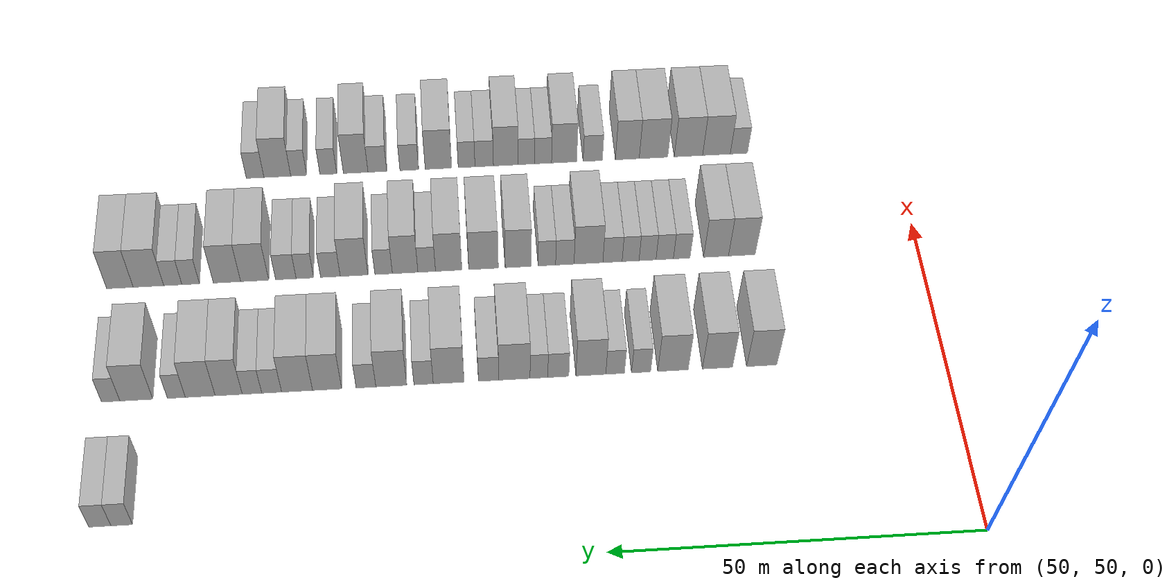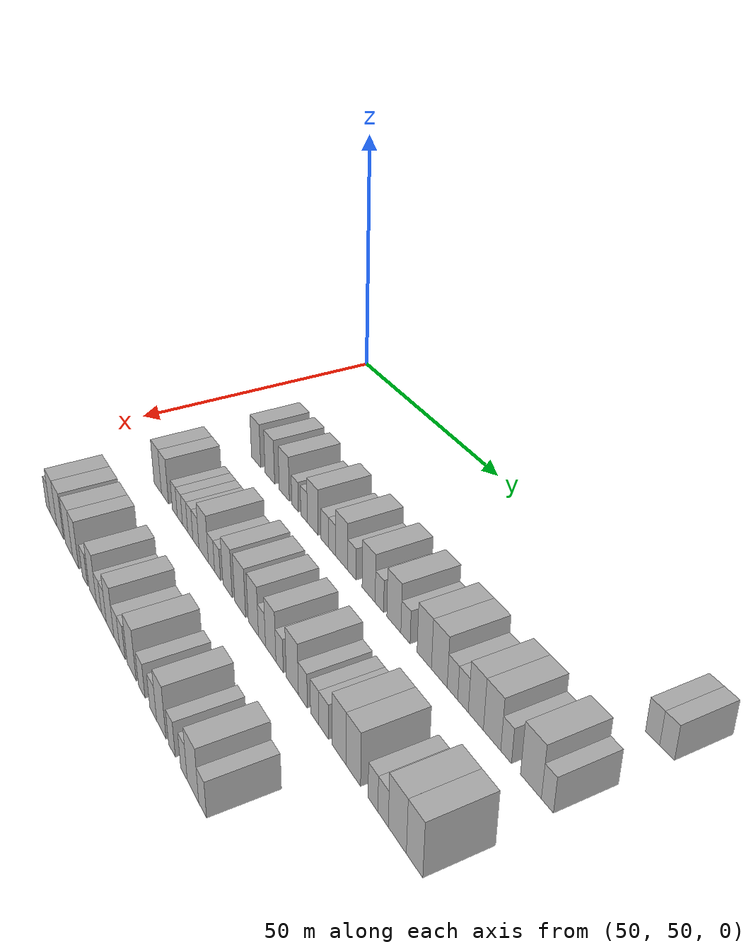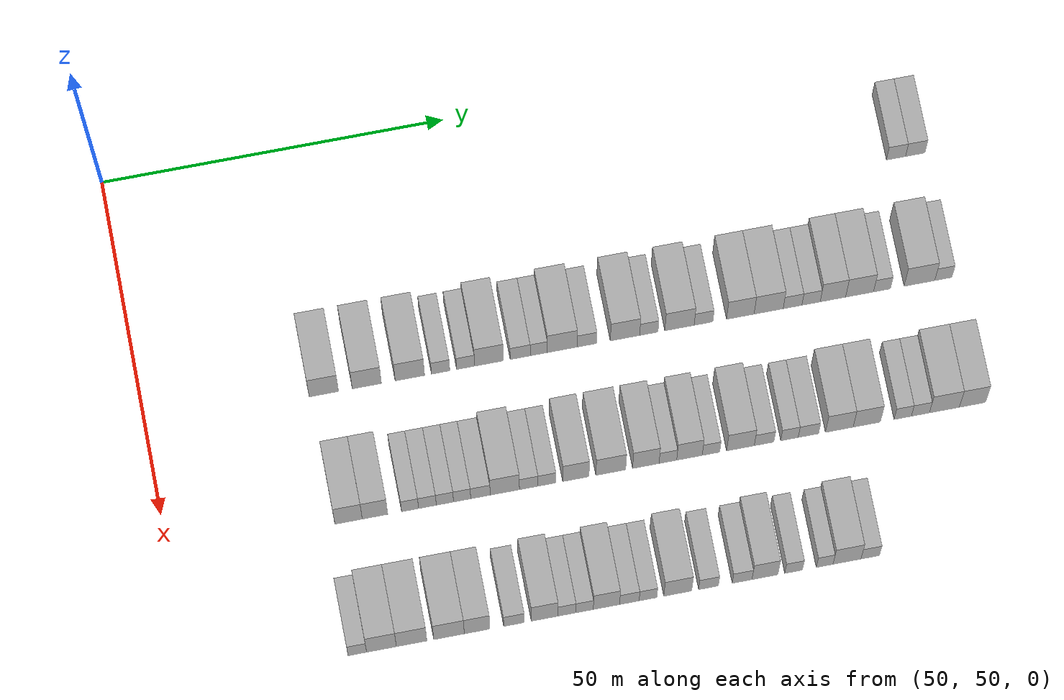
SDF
<sdf version="1.6">
 <world name="default">
  <model name="building_479">
   <static>1</static>
   <pose>63.0000 163.0776 0 0.000000 0.000000 0.000000</pose>
   <link name="link">
    <pose>0 0 3.00 0 0 0</pose>
    <collision name="collision"><geometry><box><size>10.0000 2.8079 6.0000</size></box></geometry></collision>
    <visual name="visual">
     <cast_shadows>0</cast_shadows>
     <geometry><box><size>10.0000 2.8079 6.0000</size></box></geometry>
     <material>
      <script>
       <uri>model://HANNAS_wall/materials/scripts</uri>
       <uri>model://HANNAS_wall/materials/textures</uri>
       <name>vrc/HANNAS_wall</name>
      </script>
     </material>
    </visual>
   </link>
  </model>
  <model name="building_480">
   <static>1</static>
   <pose>63.0000 165.9172 0 0.000000 0.000000 0.000000</pose>
   <link name="link">
    <pose>0 0 3.00 0 0 0</pose>
    <collision name="collision"><geometry><box><size>10.0000 2.8714 6.0000</size></box></geometry></collision>
    <visual name="visual">
     <cast_shadows>0</cast_shadows>
     <geometry><box><size>10.0000 2.8714 6.0000</size></box></geometry>
     <material>
      <script>
       <uri>model://HANNAS_wall/materials/scripts</uri>
       <uri>model://HANNAS_wall/materials/textures</uri>
       <name>vrc/HANNAS_wall</name>
      </script>
     </material>
    </visual>
   </link>
  </model>
  <model name="building_642">
   <static>1</static>
   <pose>82.0000 75.7562 0 0.000000 0.000000 0.000000</pose>
   <link name="link">
    <pose>0 0 4.50 0 0 0</pose>
    <collision name="collision"><geometry><box><size>10.0000 4.2381 9.0000</size></box></geometry></collision>
    <visual name="visual">
     <cast_shadows>0</cast_shadows>
     <geometry><box><size>10.0000 4.2381 9.0000</size></box></geometry>
     <material>
      <script>
       <uri>model://HANNAS_wall/materials/scripts</uri>
       <uri>model://HANNAS_wall/materials/textures</uri>
       <name>vrc/HANNAS_wall</name>
      </script>
     </material>
    </visual>
   </link>
  </model>
  <model name="building_643">
   <static>1</static>
   <pose>82.0000 81.9824 0 0.000000 0.000000 0.000000</pose>
   <link name="link">
    <pose>0 0 4.50 0 0 0</pose>
    <collision name="collision"><geometry><box><size>10.0000 4.2143 9.0000</size></box></geometry></collision>
    <visual name="visual">
     <cast_shadows>0</cast_shadows>
     <geometry><box><size>10.0000 4.2143 9.0000</size></box></geometry>
     <material>
      <script>
       <uri>model://HANNAS_wall/materials/scripts</uri>
       <uri>model://HANNAS_wall/materials/textures</uri>
       <name>vrc/HANNAS_wall</name>
      </script>
     </material>
    </visual>
   </link>
  </model>
  <model name="building_644">
   <static>1</static>
   <pose>82.0000 88.2176 0 0.000000 0.000000 0.000000</pose>
   <link name="link">
    <pose>0 0 4.50 0 0 0</pose>
    <collision name="collision"><geometry><box><size>10.0000 4.2559 9.0000</size></box></geometry></collision>
    <visual name="visual">
     <cast_shadows>0</cast_shadows>
     <geometry><box><size>10.0000 4.2559 9.0000</size></box></geometry>
     <material>
      <script>
       <uri>model://HANNAS_wall/materials/scripts</uri>
       <uri>model://HANNAS_wall/materials/textures</uri>
       <name>vrc/HANNAS_wall</name>
      </script>
     </material>
    </visual>
   </link>
  </model>
  <model name="building_645">
   <static>1</static>
   <pose>82.0000 92.6761 0 0.000000 0.000000 0.000000</pose>
   <link name="link">
    <pose>0 0 3.00 0 0 0</pose>
    <collision name="collision"><geometry><box><size>10.0000 2.6611 6.0000</size></box></geometry></collision>
    <visual name="visual">
     <cast_shadows>0</cast_shadows>
     <geometry><box><size>10.0000 2.6611 6.0000</size></box></geometry>
     <material>
      <script>
       <uri>model://HANNAS_wall/materials/scripts</uri>
       <uri>model://HANNAS_wall/materials/textures</uri>
       <name>vrc/HANNAS_wall</name>
      </script>
     </material>
    </visual>
   </link>
  </model>
  <model name="building_646">
   <static>1</static>
   <pose>82.0000 96.3099 0 0.000000 0.000000 0.000000</pose>
   <link name="link">
    <pose>0 0 3.00 0 0 0</pose>
    <collision name="collision"><geometry><box><size>10.0000 2.6065 6.0000</size></box></geometry></collision>
    <visual name="visual">
     <cast_shadows>0</cast_shadows>
     <geometry><box><size>10.0000 2.6065 6.0000</size></box></geometry>
     <material>
      <script>
       <uri>model://HANNAS_wall/materials/scripts</uri>
       <uri>model://HANNAS_wall/materials/textures</uri>
       <name>vrc/HANNAS_wall</name>
      </script>
     </material>
    </visual>
   </link>
  </model>
  <model name="building_647">
   <static>1</static>
   <pose>82.0000 99.6954 0 0.000000 0.000000 0.000000</pose>
   <link name="link">
    <pose>0 0 4.50 0 0 0</pose>
    <collision name="collision"><geometry><box><size>10.0000 4.1645 9.0000</size></box></geometry></collision>
    <visual name="visual">
     <cast_shadows>0</cast_shadows>
     <geometry><box><size>10.0000 4.1645 9.0000</size></box></geometry>
     <material>
      <script>
       <uri>model://HANNAS_wall/materials/scripts</uri>
       <uri>model://HANNAS_wall/materials/textures</uri>
       <name>vrc/HANNAS_wall</name>
      </script>
     </material>
    </visual>
   </link>
  </model>
  <model name="building_648">
   <static>1</static>
   <pose>82.0000 104.2372 0 0.000000 0.000000 0.000000</pose>
   <link name="link">
    <pose>0 0 3.00 0 0 0</pose>
    <collision name="collision"><geometry><box><size>10.0000 2.9190 6.0000</size></box></geometry></collision>
    <visual name="visual">
     <cast_shadows>0</cast_shadows>
     <geometry><box><size>10.0000 2.9190 6.0000</size></box></geometry>
     <material>
      <script>
       <uri>model://HANNAS_wall/materials/scripts</uri>
       <uri>model://HANNAS_wall/materials/textures</uri>
       <name>vrc/HANNAS_wall</name>
      </script>
     </material>
    </visual>
   </link>
  </model>
  <model name="building_649">
   <static>1</static>
   <pose>82.0000 106.9320 0 0.000000 0.000000 0.000000</pose>
   <link name="link">
    <pose>0 0 3.00 0 0 0</pose>
    <collision name="collision"><geometry><box><size>10.0000 2.4707 6.0000</size></box></geometry></collision>
    <visual name="visual">
     <cast_shadows>0</cast_shadows>
     <geometry><box><size>10.0000 2.4707 6.0000</size></box></geometry>
     <material>
      <script>
       <uri>model://HANNAS_wall/materials/scripts</uri>
       <uri>model://HANNAS_wall/materials/textures</uri>
       <name>vrc/HANNAS_wall</name>
      </script>
     </material>
    </visual>
   </link>
  </model>
  <model name="building_650">
   <static>1</static>
   <pose>82.0000 110.3358 0 0.000000 0.000000 0.000000</pose>
   <link name="link">
    <pose>0 0 4.50 0 0 0</pose>
    <collision name="collision"><geometry><box><size>10.0000 4.3368 9.0000</size></box></geometry></collision>
    <visual name="visual">
     <cast_shadows>0</cast_shadows>
     <geometry><box><size>10.0000 4.3368 9.0000</size></box></geometry>
     <material>
      <script>
       <uri>model://HANNAS_wall/materials/scripts</uri>
       <uri>model://HANNAS_wall/materials/textures</uri>
       <name>vrc/HANNAS_wall</name>
      </script>
     </material>
    </visual>
   </link>
  </model>
  <model name="building_651">
   <static>1</static>
   <pose>82.0000 113.9204 0 0.000000 0.000000 0.000000</pose>
   <link name="link">
    <pose>0 0 3.00 0 0 0</pose>
    <collision name="collision"><geometry><box><size>10.0000 2.8323 6.0000</size></box></geometry></collision>
    <visual name="visual">
     <cast_shadows>0</cast_shadows>
     <geometry><box><size>10.0000 2.8323 6.0000</size></box></geometry>
     <material>
      <script>
       <uri>model://HANNAS_wall/materials/scripts</uri>
       <uri>model://HANNAS_wall/materials/textures</uri>
       <name>vrc/HANNAS_wall</name>
      </script>
     </material>
    </visual>
   </link>
  </model>
  <model name="building_652">
   <static>1</static>
   <pose>82.0000 119.4723 0 0.000000 0.000000 0.000000</pose>
   <link name="link">
    <pose>0 0 4.50 0 0 0</pose>
    <collision name="collision"><geometry><box><size>10.0000 4.2715 9.0000</size></box></geometry></collision>
    <visual name="visual">
     <cast_shadows>0</cast_shadows>
     <geometry><box><size>10.0000 4.2715 9.0000</size></box></geometry>
     <material>
      <script>
       <uri>model://HANNAS_wall/materials/scripts</uri>
       <uri>model://HANNAS_wall/materials/textures</uri>
       <name>vrc/HANNAS_wall</name>
      </script>
     </material>
    </visual>
   </link>
  </model>
  <model name="building_653">
   <static>1</static>
   <pose>82.0000 122.9438 0 0.000000 0.000000 0.000000</pose>
   <link name="link">
    <pose>0 0 3.00 0 0 0</pose>
    <collision name="collision"><geometry><box><size>10.0000 2.6716 6.0000</size></box></geometry></collision>
    <visual name="visual">
     <cast_shadows>0</cast_shadows>
     <geometry><box><size>10.0000 2.6716 6.0000</size></box></geometry>
     <material>
      <script>
       <uri>model://HANNAS_wall/materials/scripts</uri>
       <uri>model://HANNAS_wall/materials/textures</uri>
       <name>vrc/HANNAS_wall</name>
      </script>
     </material>
    </visual>
   </link>
  </model>
  <model name="building_654">
   <static>1</static>
   <pose>82.0000 127.4165 0 0.000000 0.000000 0.000000</pose>
   <link name="link">
    <pose>0 0 4.50 0 0 0</pose>
    <collision name="collision"><geometry><box><size>10.0000 4.2738 9.0000</size></box></geometry></collision>
    <visual name="visual">
     <cast_shadows>0</cast_shadows>
     <geometry><box><size>10.0000 4.2738 9.0000</size></box></geometry>
     <material>
      <script>
       <uri>model://HANNAS_wall/materials/scripts</uri>
       <uri>model://HANNAS_wall/materials/textures</uri>
       <name>vrc/HANNAS_wall</name>
      </script>
     </material>
    </visual>
   </link>
  </model>
  <model name="building_655">
   <static>1</static>
   <pose>82.0000 130.9132 0 0.000000 0.000000 0.000000</pose>
   <link name="link">
    <pose>0 0 3.00 0 0 0</pose>
    <collision name="collision"><geometry><box><size>10.0000 2.7196 6.0000</size></box></geometry></collision>
    <visual name="visual">
     <cast_shadows>0</cast_shadows>
     <geometry><box><size>10.0000 2.7196 6.0000</size></box></geometry>
     <material>
      <script>
       <uri>model://HANNAS_wall/materials/scripts</uri>
       <uri>model://HANNAS_wall/materials/textures</uri>
       <name>vrc/HANNAS_wall</name>
      </script>
     </material>
    </visual>
   </link>
  </model>
  <model name="building_656">
   <static>1</static>
   <pose>82.0000 136.2828 0 0.000000 0.000000 0.000000</pose>
   <link name="link">
    <pose>0 0 4.50 0 0 0</pose>
    <collision name="collision"><geometry><box><size>10.0000 4.0196 9.0000</size></box></geometry></collision>
    <visual name="visual">
     <cast_shadows>0</cast_shadows>
     <geometry><box><size>10.0000 4.0196 9.0000</size></box></geometry>
     <material>
      <script>
       <uri>model://HANNAS_wall/materials/scripts</uri>
       <uri>model://HANNAS_wall/materials/textures</uri>
       <name>vrc/HANNAS_wall</name>
      </script>
     </material>
    </visual>
   </link>
  </model>
  <model name="building_657">
   <static>1</static>
   <pose>82.0000 140.4187 0 0.000000 0.000000 0.000000</pose>
   <link name="link">
    <pose>0 0 4.50 0 0 0</pose>
    <collision name="collision"><geometry><box><size>10.0000 4.2522 9.0000</size></box></geometry></collision>
    <visual name="visual">
     <cast_shadows>0</cast_shadows>
     <geometry><box><size>10.0000 4.2522 9.0000</size></box></geometry>
     <material>
      <script>
       <uri>model://HANNAS_wall/materials/scripts</uri>
       <uri>model://HANNAS_wall/materials/textures</uri>
       <name>vrc/HANNAS_wall</name>
      </script>
     </material>
    </visual>
   </link>
  </model>
  <model name="building_658">
   <static>1</static>
   <pose>82.0000 143.9140 0 0.000000 0.000000 0.000000</pose>
   <link name="link">
    <pose>0 0 3.00 0 0 0</pose>
    <collision name="collision"><geometry><box><size>10.0000 2.7383 6.0000</size></box></geometry></collision>
    <visual name="visual">
     <cast_shadows>0</cast_shadows>
     <geometry><box><size>10.0000 2.7383 6.0000</size></box></geometry>
     <material>
      <script>
       <uri>model://HANNAS_wall/materials/scripts</uri>
       <uri>model://HANNAS_wall/materials/textures</uri>
       <name>vrc/HANNAS_wall</name>
      </script>
     </material>
    </visual>
   </link>
  </model>
  <model name="building_659">
   <static>1</static>
   <pose>82.0000 146.6201 0 0.000000 0.000000 0.000000</pose>
   <link name="link">
    <pose>0 0 3.00 0 0 0</pose>
    <collision name="collision"><geometry><box><size>10.0000 2.6741 6.0000</size></box></geometry></collision>
    <visual name="visual">
     <cast_shadows>0</cast_shadows>
     <geometry><box><size>10.0000 2.6741 6.0000</size></box></geometry>
     <material>
      <script>
       <uri>model://HANNAS_wall/materials/scripts</uri>
       <uri>model://HANNAS_wall/materials/textures</uri>
       <name>vrc/HANNAS_wall</name>
      </script>
     </material>
    </visual>
   </link>
  </model>
  <model name="building_660">
   <static>1</static>
   <pose>82.0000 149.8166 0 0.000000 0.000000 0.000000</pose>
   <link name="link">
    <pose>0 0 4.50 0 0 0</pose>
    <collision name="collision"><geometry><box><size>10.0000 3.7188 9.0000</size></box></geometry></collision>
    <visual name="visual">
     <cast_shadows>0</cast_shadows>
     <geometry><box><size>10.0000 3.7188 9.0000</size></box></geometry>
     <material>
      <script>
       <uri>model://HANNAS_wall/materials/scripts</uri>
       <uri>model://HANNAS_wall/materials/textures</uri>
       <name>vrc/HANNAS_wall</name>
      </script>
     </material>
    </visual>
   </link>
  </model>
  <model name="building_661">
   <static>1</static>
   <pose>82.0000 153.7215 0 0.000000 0.000000 0.000000</pose>
   <link name="link">
    <pose>0 0 4.50 0 0 0</pose>
    <collision name="collision"><geometry><box><size>10.0000 4.0911 9.0000</size></box></geometry></collision>
    <visual name="visual">
     <cast_shadows>0</cast_shadows>
     <geometry><box><size>10.0000 4.0911 9.0000</size></box></geometry>
     <material>
      <script>
       <uri>model://HANNAS_wall/materials/scripts</uri>
       <uri>model://HANNAS_wall/materials/textures</uri>
       <name>vrc/HANNAS_wall</name>
      </script>
     </material>
    </visual>
   </link>
  </model>
  <model name="building_662">
   <static>1</static>
   <pose>82.0000 156.9994 0 0.000000 0.000000 0.000000</pose>
   <link name="link">
    <pose>0 0 3.00 0 0 0</pose>
    <collision name="collision"><geometry><box><size>10.0000 2.4648 6.0000</size></box></geometry></collision>
    <visual name="visual">
     <cast_shadows>0</cast_shadows>
     <geometry><box><size>10.0000 2.4648 6.0000</size></box></geometry>
     <material>
      <script>
       <uri>model://HANNAS_wall/materials/scripts</uri>
       <uri>model://HANNAS_wall/materials/textures</uri>
       <name>vrc/HANNAS_wall</name>
      </script>
     </material>
    </visual>
   </link>
  </model>
  <model name="building_663">
   <static>1</static>
   <pose>82.0000 162.4799 0 0.000000 0.000000 0.000000</pose>
   <link name="link">
    <pose>0 0 4.50 0 0 0</pose>
    <collision name="collision"><geometry><box><size>10.0000 4.4961 9.0000</size></box></geometry></collision>
    <visual name="visual">
     <cast_shadows>0</cast_shadows>
     <geometry><box><size>10.0000 4.4961 9.0000</size></box></geometry>
     <material>
      <script>
       <uri>model://HANNAS_wall/materials/scripts</uri>
       <uri>model://HANNAS_wall/materials/textures</uri>
       <name>vrc/HANNAS_wall</name>
      </script>
     </material>
    </visual>
   </link>
  </model>
  <model name="building_664">
   <static>1</static>
   <pose>82.0000 165.9850 0 0.000000 0.000000 0.000000</pose>
   <link name="link">
    <pose>0 0 3.00 0 0 0</pose>
    <collision name="collision"><geometry><box><size>10.0000 2.5142 6.0000</size></box></geometry></collision>
    <visual name="visual">
     <cast_shadows>0</cast_shadows>
     <geometry><box><size>10.0000 2.5142 6.0000</size></box></geometry>
     <material>
      <script>
       <uri>model://HANNAS_wall/materials/scripts</uri>
       <uri>model://HANNAS_wall/materials/textures</uri>
       <name>vrc/HANNAS_wall</name>
      </script>
     </material>
    </visual>
   </link>
  </model>
  <model name="building_824">
   <static>1</static>
   <pose>101.0000 75.8792 0 0.000000 0.000000 0.000000</pose>
   <link name="link">
    <pose>0 0 4.50 0 0 0</pose>
    <collision name="collision"><geometry><box><size>10.0000 3.9296 9.0000</size></box></geometry></collision>
    <visual name="visual">
     <cast_shadows>0</cast_shadows>
     <geometry><box><size>10.0000 3.9296 9.0000</size></box></geometry>
     <material>
      <script>
       <uri>model://HANNAS_wall/materials/scripts</uri>
       <uri>model://HANNAS_wall/materials/textures</uri>
       <name>vrc/HANNAS_wall</name>
      </script>
     </material>
    </visual>
   </link>
  </model>
  <model name="building_825">
   <static>1</static>
   <pose>101.0000 79.6739 0 0.000000 0.000000 0.000000</pose>
   <link name="link">
    <pose>0 0 4.50 0 0 0</pose>
    <collision name="collision"><geometry><box><size>10.0000 3.6596 9.0000</size></box></geometry></collision>
    <visual name="visual">
     <cast_shadows>0</cast_shadows>
     <geometry><box><size>10.0000 3.6596 9.0000</size></box></geometry>
     <material>
      <script>
       <uri>model://HANNAS_wall/materials/scripts</uri>
       <uri>model://HANNAS_wall/materials/textures</uri>
       <name>vrc/HANNAS_wall</name>
      </script>
     </material>
    </visual>
   </link>
  </model>
  <model name="building_826">
   <static>1</static>
   <pose>101.0000 84.7231 0 0.000000 0.000000 0.000000</pose>
   <link name="link">
    <pose>0 0 3.00 0 0 0</pose>
    <collision name="collision"><geometry><box><size>10.0000 2.4389 6.0000</size></box></geometry></collision>
    <visual name="visual">
     <cast_shadows>0</cast_shadows>
     <geometry><box><size>10.0000 2.4389 6.0000</size></box></geometry>
     <material>
      <script>
       <uri>model://HANNAS_wall/materials/scripts</uri>
       <uri>model://HANNAS_wall/materials/textures</uri>
       <name>vrc/HANNAS_wall</name>
      </script>
     </material>
    </visual>
   </link>
  </model>
  <model name="building_827">
   <static>1</static>
   <pose>101.0000 87.2176 0 0.000000 0.000000 0.000000</pose>
   <link name="link">
    <pose>0 0 3.00 0 0 0</pose>
    <collision name="collision"><geometry><box><size>10.0000 2.5501 6.0000</size></box></geometry></collision>
    <visual name="visual">
     <cast_shadows>0</cast_shadows>
     <geometry><box><size>10.0000 2.5501 6.0000</size></box></geometry>
     <material>
      <script>
       <uri>model://HANNAS_wall/materials/scripts</uri>
       <uri>model://HANNAS_wall/materials/textures</uri>
       <name>vrc/HANNAS_wall</name>
      </script>
     </material>
    </visual>
   </link>
  </model>
  <model name="building_828">
   <static>1</static>
   <pose>101.0000 89.7364 0 0.000000 0.000000 0.000000</pose>
   <link name="link">
    <pose>0 0 3.00 0 0 0</pose>
    <collision name="collision"><geometry><box><size>10.0000 2.4875 6.0000</size></box></geometry></collision>
    <visual name="visual">
     <cast_shadows>0</cast_shadows>
     <geometry><box><size>10.0000 2.4875 6.0000</size></box></geometry>
     <material>
      <script>
       <uri>model://HANNAS_wall/materials/scripts</uri>
       <uri>model://HANNAS_wall/materials/textures</uri>
       <name>vrc/HANNAS_wall</name>
      </script>
     </material>
    </visual>
   </link>
  </model>
  <model name="building_829">
   <static>1</static>
   <pose>101.0000 92.2183 0 0.000000 0.000000 0.000000</pose>
   <link name="link">
    <pose>0 0 3.00 0 0 0</pose>
    <collision name="collision"><geometry><box><size>10.0000 2.4764 6.0000</size></box></geometry></collision>
    <visual name="visual">
     <cast_shadows>0</cast_shadows>
     <geometry><box><size>10.0000 2.4764 6.0000</size></box></geometry>
     <material>
      <script>
       <uri>model://HANNAS_wall/materials/scripts</uri>
       <uri>model://HANNAS_wall/materials/textures</uri>
       <name>vrc/HANNAS_wall</name>
      </script>
     </material>
    </visual>
   </link>
  </model>
  <model name="building_830">
   <static>1</static>
   <pose>101.0000 94.8628 0 0.000000 0.000000 0.000000</pose>
   <link name="link">
    <pose>0 0 3.00 0 0 0</pose>
    <collision name="collision"><geometry><box><size>10.0000 2.8125 6.0000</size></box></geometry></collision>
    <visual name="visual">
     <cast_shadows>0</cast_shadows>
     <geometry><box><size>10.0000 2.8125 6.0000</size></box></geometry>
     <material>
      <script>
       <uri>model://HANNAS_wall/materials/scripts</uri>
       <uri>model://HANNAS_wall/materials/textures</uri>
       <name>vrc/HANNAS_wall</name>
      </script>
     </material>
    </visual>
   </link>
  </model>
  <model name="building_831">
   <static>1</static>
   <pose>101.0000 98.3765 0 0.000000 0.000000 0.000000</pose>
   <link name="link">
    <pose>0 0 4.50 0 0 0</pose>
    <collision name="collision"><geometry><box><size>10.0000 4.2149 9.0000</size></box></geometry></collision>
    <visual name="visual">
     <cast_shadows>0</cast_shadows>
     <geometry><box><size>10.0000 4.2149 9.0000</size></box></geometry>
     <material>
      <script>
       <uri>model://HANNAS_wall/materials/scripts</uri>
       <uri>model://HANNAS_wall/materials/textures</uri>
       <name>vrc/HANNAS_wall</name>
      </script>
     </material>
    </visual>
   </link>
  </model>
  <model name="building_832">
   <static>1</static>
   <pose>101.0000 101.8276 0 0.000000 0.000000 0.000000</pose>
   <link name="link">
    <pose>0 0 3.00 0 0 0</pose>
    <collision name="collision"><geometry><box><size>10.0000 2.6875 6.0000</size></box></geometry></collision>
    <visual name="visual">
     <cast_shadows>0</cast_shadows>
     <geometry><box><size>10.0000 2.6875 6.0000</size></box></geometry>
     <material>
      <script>
       <uri>model://HANNAS_wall/materials/scripts</uri>
       <uri>model://HANNAS_wall/materials/textures</uri>
       <name>vrc/HANNAS_wall</name>
      </script>
     </material>
    </visual>
   </link>
  </model>
  <model name="building_833">
   <static>1</static>
   <pose>101.0000 104.4472 0 0.000000 0.000000 0.000000</pose>
   <link name="link">
    <pose>0 0 3.00 0 0 0</pose>
    <collision name="collision"><geometry><box><size>10.0000 2.5517 6.0000</size></box></geometry></collision>
    <visual name="visual">
     <cast_shadows>0</cast_shadows>
     <geometry><box><size>10.0000 2.5517 6.0000</size></box></geometry>
     <material>
      <script>
       <uri>model://HANNAS_wall/materials/scripts</uri>
       <uri>model://HANNAS_wall/materials/textures</uri>
       <name>vrc/HANNAS_wall</name>
      </script>
     </material>
    </visual>
   </link>
  </model>
  <model name="building_834">
   <static>1</static>
   <pose>101.0000 108.6227 0 0.000000 0.000000 0.000000</pose>
   <link name="link">
    <pose>0 0 4.50 0 0 0</pose>
    <collision name="collision"><geometry><box><size>10.0000 3.7992 9.0000</size></box></geometry></collision>
    <visual name="visual">
     <cast_shadows>0</cast_shadows>
     <geometry><box><size>10.0000 3.7992 9.0000</size></box></geometry>
     <material>
      <script>
       <uri>model://HANNAS_wall/materials/scripts</uri>
       <uri>model://HANNAS_wall/materials/textures</uri>
       <name>vrc/HANNAS_wall</name>
      </script>
     </material>
    </visual>
   </link>
  </model>
  <model name="building_835">
   <static>1</static>
   <pose>101.0000 113.6741 0 0.000000 0.000000 0.000000</pose>
   <link name="link">
    <pose>0 0 4.50 0 0 0</pose>
    <collision name="collision"><geometry><box><size>10.0000 4.3037 9.0000</size></box></geometry></collision>
    <visual name="visual">
     <cast_shadows>0</cast_shadows>
     <geometry><box><size>10.0000 4.3037 9.0000</size></box></geometry>
     <material>
      <script>
       <uri>model://HANNAS_wall/materials/scripts</uri>
       <uri>model://HANNAS_wall/materials/textures</uri>
       <name>vrc/HANNAS_wall</name>
      </script>
     </material>
    </visual>
   </link>
  </model>
  <model name="building_836">
   <static>1</static>
   <pose>101.0000 118.7417 0 0.000000 0.000000 0.000000</pose>
   <link name="link">
    <pose>0 0 4.50 0 0 0</pose>
    <collision name="collision"><geometry><box><size>10.0000 3.8314 9.0000</size></box></geometry></collision>
    <visual name="visual">
     <cast_shadows>0</cast_shadows>
     <geometry><box><size>10.0000 3.8314 9.0000</size></box></geometry>
     <material>
      <script>
       <uri>model://HANNAS_wall/materials/scripts</uri>
       <uri>model://HANNAS_wall/materials/textures</uri>
       <name>vrc/HANNAS_wall</name>
      </script>
     </material>
    </visual>
   </link>
  </model>
  <model name="building_837">
   <static>1</static>
   <pose>101.0000 121.9340 0 0.000000 0.000000 0.000000</pose>
   <link name="link">
    <pose>0 0 3.00 0 0 0</pose>
    <collision name="collision"><geometry><box><size>10.0000 2.5533 6.0000</size></box></geometry></collision>
    <visual name="visual">
     <cast_shadows>0</cast_shadows>
     <geometry><box><size>10.0000 2.5533 6.0000</size></box></geometry>
     <material>
      <script>
       <uri>model://HANNAS_wall/materials/scripts</uri>
       <uri>model://HANNAS_wall/materials/textures</uri>
       <name>vrc/HANNAS_wall</name>
      </script>
     </material>
    </visual>
   </link>
  </model>
  <model name="building_838">
   <static>1</static>
   <pose>101.0000 125.0589 0 0.000000 0.000000 0.000000</pose>
   <link name="link">
    <pose>0 0 4.50 0 0 0</pose>
    <collision name="collision"><geometry><box><size>10.0000 3.6965 9.0000</size></box></geometry></collision>
    <visual name="visual">
     <cast_shadows>0</cast_shadows>
     <geometry><box><size>10.0000 3.6965 9.0000</size></box></geometry>
     <material>
      <script>
       <uri>model://HANNAS_wall/materials/scripts</uri>
       <uri>model://HANNAS_wall/materials/textures</uri>
       <name>vrc/HANNAS_wall</name>
      </script>
     </material>
    </visual>
   </link>
  </model>
  <model name="building_839">
   <static>1</static>
   <pose>101.0000 128.1720 0 0.000000 0.000000 0.000000</pose>
   <link name="link">
    <pose>0 0 3.00 0 0 0</pose>
    <collision name="collision"><geometry><box><size>10.0000 2.5295 6.0000</size></box></geometry></collision>
    <visual name="visual">
     <cast_shadows>0</cast_shadows>
     <geometry><box><size>10.0000 2.5295 6.0000</size></box></geometry>
     <material>
      <script>
       <uri>model://HANNAS_wall/materials/scripts</uri>
       <uri>model://HANNAS_wall/materials/textures</uri>
       <name>vrc/HANNAS_wall</name>
      </script>
     </material>
    </visual>
   </link>
  </model>
  <model name="building_840">
   <static>1</static>
   <pose>101.0000 132.4438 0 0.000000 0.000000 0.000000</pose>
   <link name="link">
    <pose>0 0 4.50 0 0 0</pose>
    <collision name="collision"><geometry><box><size>10.0000 4.0141 9.0000</size></box></geometry></collision>
    <visual name="visual">
     <cast_shadows>0</cast_shadows>
     <geometry><box><size>10.0000 4.0141 9.0000</size></box></geometry>
     <material>
      <script>
       <uri>model://HANNAS_wall/materials/scripts</uri>
       <uri>model://HANNAS_wall/materials/textures</uri>
       <name>vrc/HANNAS_wall</name>
      </script>
     </material>
    </visual>
   </link>
  </model>
  <model name="building_841">
   <static>1</static>
   <pose>101.0000 135.8710 0 0.000000 0.000000 0.000000</pose>
   <link name="link">
    <pose>0 0 3.00 0 0 0</pose>
    <collision name="collision"><geometry><box><size>10.0000 2.8402 6.0000</size></box></geometry></collision>
    <visual name="visual">
     <cast_shadows>0</cast_shadows>
     <geometry><box><size>10.0000 2.8402 6.0000</size></box></geometry>
     <material>
      <script>
       <uri>model://HANNAS_wall/materials/scripts</uri>
       <uri>model://HANNAS_wall/materials/textures</uri>
       <name>vrc/HANNAS_wall</name>
      </script>
     </material>
    </visual>
   </link>
  </model>
  <model name="building_842">
   <static>1</static>
   <pose>101.0000 139.5558 0 0.000000 0.000000 0.000000</pose>
   <link name="link">
    <pose>0 0 3.00 0 0 0</pose>
    <collision name="collision"><geometry><box><size>10.0000 2.5294 6.0000</size></box></geometry></collision>
    <visual name="visual">
     <cast_shadows>0</cast_shadows>
     <geometry><box><size>10.0000 2.5294 6.0000</size></box></geometry>
     <material>
      <script>
       <uri>model://HANNAS_wall/materials/scripts</uri>
       <uri>model://HANNAS_wall/materials/textures</uri>
       <name>vrc/HANNAS_wall</name>
      </script>
     </material>
    </visual>
   </link>
  </model>
  <model name="building_843">
   <static>1</static>
   <pose>101.0000 142.2973 0 0.000000 0.000000 0.000000</pose>
   <link name="link">
    <pose>0 0 3.00 0 0 0</pose>
    <collision name="collision"><geometry><box><size>10.0000 2.9536 6.0000</size></box></geometry></collision>
    <visual name="visual">
     <cast_shadows>0</cast_shadows>
     <geometry><box><size>10.0000 2.9536 6.0000</size></box></geometry>
     <material>
      <script>
       <uri>model://HANNAS_wall/materials/scripts</uri>
       <uri>model://HANNAS_wall/materials/textures</uri>
       <name>vrc/HANNAS_wall</name>
      </script>
     </material>
    </visual>
   </link>
  </model>
  <model name="building_844">
   <static>1</static>
   <pose>101.0000 146.7902 0 0.000000 0.000000 0.000000</pose>
   <link name="link">
    <pose>0 0 4.50 0 0 0</pose>
    <collision name="collision"><geometry><box><size>10.0000 4.0322 9.0000</size></box></geometry></collision>
    <visual name="visual">
     <cast_shadows>0</cast_shadows>
     <geometry><box><size>10.0000 4.0322 9.0000</size></box></geometry>
     <material>
      <script>
       <uri>model://HANNAS_wall/materials/scripts</uri>
       <uri>model://HANNAS_wall/materials/textures</uri>
       <name>vrc/HANNAS_wall</name>
      </script>
     </material>
    </visual>
   </link>
  </model>
  <model name="building_845">
   <static>1</static>
   <pose>101.0000 150.7744 0 0.000000 0.000000 0.000000</pose>
   <link name="link">
    <pose>0 0 4.50 0 0 0</pose>
    <collision name="collision"><geometry><box><size>10.0000 3.9362 9.0000</size></box></geometry></collision>
    <visual name="visual">
     <cast_shadows>0</cast_shadows>
     <geometry><box><size>10.0000 3.9362 9.0000</size></box></geometry>
     <material>
      <script>
       <uri>model://HANNAS_wall/materials/scripts</uri>
       <uri>model://HANNAS_wall/materials/textures</uri>
       <name>vrc/HANNAS_wall</name>
      </script>
     </material>
    </visual>
   </link>
  </model>
  <model name="building_846">
   <static>1</static>
   <pose>101.0000 156.0020 0 0.000000 0.000000 0.000000</pose>
   <link name="link">
    <pose>0 0 3.00 0 0 0</pose>
    <collision name="collision"><geometry><box><size>10.0000 2.5191 6.0000</size></box></geometry></collision>
    <visual name="visual">
     <cast_shadows>0</cast_shadows>
     <geometry><box><size>10.0000 2.5191 6.0000</size></box></geometry>
     <material>
      <script>
       <uri>model://HANNAS_wall/materials/scripts</uri>
       <uri>model://HANNAS_wall/materials/textures</uri>
       <name>vrc/HANNAS_wall</name>
      </script>
     </material>
    </visual>
   </link>
  </model>
  <model name="building_847">
   <static>1</static>
   <pose>101.0000 158.5694 0 0.000000 0.000000 0.000000</pose>
   <link name="link">
    <pose>0 0 3.00 0 0 0</pose>
    <collision name="collision"><geometry><box><size>10.0000 2.6157 6.0000</size></box></geometry></collision>
    <visual name="visual">
     <cast_shadows>0</cast_shadows>
     <geometry><box><size>10.0000 2.6157 6.0000</size></box></geometry>
     <material>
      <script>
       <uri>model://HANNAS_wall/materials/scripts</uri>
       <uri>model://HANNAS_wall/materials/textures</uri>
       <name>vrc/HANNAS_wall</name>
      </script>
     </material>
    </visual>
   </link>
  </model>
  <model name="building_848">
   <static>1</static>
   <pose>101.0000 162.0623 0 0.000000 0.000000 0.000000</pose>
   <link name="link">
    <pose>0 0 4.50 0 0 0</pose>
    <collision name="collision"><geometry><box><size>10.0000 4.3701 9.0000</size></box></geometry></collision>
    <visual name="visual">
     <cast_shadows>0</cast_shadows>
     <geometry><box><size>10.0000 4.3701 9.0000</size></box></geometry>
     <material>
      <script>
       <uri>model://HANNAS_wall/materials/scripts</uri>
       <uri>model://HANNAS_wall/materials/textures</uri>
       <name>vrc/HANNAS_wall</name>
      </script>
     </material>
    </visual>
   </link>
  </model>
  <model name="building_849">
   <static>1</static>
   <pose>101.0000 166.1475 0 0.000000 0.000000 0.000000</pose>
   <link name="link">
    <pose>0 0 4.50 0 0 0</pose>
    <collision name="collision"><geometry><box><size>10.0000 3.8001 9.0000</size></box></geometry></collision>
    <visual name="visual">
     <cast_shadows>0</cast_shadows>
     <geometry><box><size>10.0000 3.8001 9.0000</size></box></geometry>
     <material>
      <script>
       <uri>model://HANNAS_wall/materials/scripts</uri>
       <uri>model://HANNAS_wall/materials/textures</uri>
       <name>vrc/HANNAS_wall</name>
      </script>
     </material>
    </visual>
   </link>
  </model>
  <model name="building_1001">
   <static>1</static>
   <pose>120.0000 73.6679 0 0.000000 0.000000 0.000000</pose>
   <link name="link">
    <pose>0 0 3.00 0 0 0</pose>
    <collision name="collision"><geometry><box><size>10.0000 2.6354 6.0000</size></box></geometry></collision>
    <visual name="visual">
     <cast_shadows>0</cast_shadows>
     <geometry><box><size>10.0000 2.6354 6.0000</size></box></geometry>
     <material>
      <script>
       <uri>model://HANNAS_wall/materials/scripts</uri>
       <uri>model://HANNAS_wall/materials/textures</uri>
       <name>vrc/HANNAS_wall</name>
      </script>
     </material>
    </visual>
   </link>
  </model>
  <model name="building_1002">
   <static>1</static>
   <pose>120.0000 77.1098 0 0.000000 0.000000 0.000000</pose>
   <link name="link">
    <pose>0 0 4.50 0 0 0</pose>
    <collision name="collision"><geometry><box><size>10.0000 4.2483 9.0000</size></box></geometry></collision>
    <visual name="visual">
     <cast_shadows>0</cast_shadows>
     <geometry><box><size>10.0000 4.2483 9.0000</size></box></geometry>
     <material>
      <script>
       <uri>model://HANNAS_wall/materials/scripts</uri>
       <uri>model://HANNAS_wall/materials/textures</uri>
       <name>vrc/HANNAS_wall</name>
      </script>
     </material>
    </visual>
   </link>
  </model>
  <model name="building_1003">
   <static>1</static>
   <pose>120.0000 81.4113 0 0.000000 0.000000 0.000000</pose>
   <link name="link">
    <pose>0 0 4.50 0 0 0</pose>
    <collision name="collision"><geometry><box><size>10.0000 4.3547 9.0000</size></box></geometry></collision>
    <visual name="visual">
     <cast_shadows>0</cast_shadows>
     <geometry><box><size>10.0000 4.3547 9.0000</size></box></geometry>
     <material>
      <script>
       <uri>model://HANNAS_wall/materials/scripts</uri>
       <uri>model://HANNAS_wall/materials/textures</uri>
       <name>vrc/HANNAS_wall</name>
      </script>
     </material>
    </visual>
   </link>
  </model>
  <model name="building_1004">
   <static>1</static>
   <pose>120.0000 86.7726 0 0.000000 0.000000 0.000000</pose>
   <link name="link">
    <pose>0 0 4.50 0 0 0</pose>
    <collision name="collision"><geometry><box><size>10.0000 4.3679 9.0000</size></box></geometry></collision>
    <visual name="visual">
     <cast_shadows>0</cast_shadows>
     <geometry><box><size>10.0000 4.3679 9.0000</size></box></geometry>
     <material>
      <script>
       <uri>model://HANNAS_wall/materials/scripts</uri>
       <uri>model://HANNAS_wall/materials/textures</uri>
       <name>vrc/HANNAS_wall</name>
      </script>
     </material>
    </visual>
   </link>
  </model>
  <model name="building_1005">
   <static>1</static>
   <pose>120.0000 90.7799 0 0.000000 0.000000 0.000000</pose>
   <link name="link">
    <pose>0 0 4.50 0 0 0</pose>
    <collision name="collision"><geometry><box><size>10.0000 3.6468 9.0000</size></box></geometry></collision>
    <visual name="visual">
     <cast_shadows>0</cast_shadows>
     <geometry><box><size>10.0000 3.6468 9.0000</size></box></geometry>
     <material>
      <script>
       <uri>model://HANNAS_wall/materials/scripts</uri>
       <uri>model://HANNAS_wall/materials/textures</uri>
       <name>vrc/HANNAS_wall</name>
      </script>
     </material>
    </visual>
   </link>
  </model>
  <model name="building_1006">
   <static>1</static>
   <pose>120.0000 96.0724 0 0.000000 0.000000 0.000000</pose>
   <link name="link">
    <pose>0 0 3.00 0 0 0</pose>
    <collision name="collision"><geometry><box><size>10.0000 2.9383 6.0000</size></box></geometry></collision>
    <visual name="visual">
     <cast_shadows>0</cast_shadows>
     <geometry><box><size>10.0000 2.9383 6.0000</size></box></geometry>
     <material>
      <script>
       <uri>model://HANNAS_wall/materials/scripts</uri>
       <uri>model://HANNAS_wall/materials/textures</uri>
       <name>vrc/HANNAS_wall</name>
      </script>
     </material>
    </visual>
   </link>
  </model>
  <model name="building_1007">
   <static>1</static>
   <pose>120.0000 100.4503 0 0.000000 0.000000 0.000000</pose>
   <link name="link">
    <pose>0 0 4.50 0 0 0</pose>
    <collision name="collision"><geometry><box><size>10.0000 3.8174 9.0000</size></box></geometry></collision>
    <visual name="visual">
     <cast_shadows>0</cast_shadows>
     <geometry><box><size>10.0000 3.8174 9.0000</size></box></geometry>
     <material>
      <script>
       <uri>model://HANNAS_wall/materials/scripts</uri>
       <uri>model://HANNAS_wall/materials/textures</uri>
       <name>vrc/HANNAS_wall</name>
      </script>
     </material>
    </visual>
   </link>
  </model>
  <model name="building_1008">
   <static>1</static>
   <pose>120.0000 103.6503 0 0.000000 0.000000 0.000000</pose>
   <link name="link">
    <pose>0 0 3.00 0 0 0</pose>
    <collision name="collision"><geometry><box><size>10.0000 2.5825 6.0000</size></box></geometry></collision>
    <visual name="visual">
     <cast_shadows>0</cast_shadows>
     <geometry><box><size>10.0000 2.5825 6.0000</size></box></geometry>
     <material>
      <script>
       <uri>model://HANNAS_wall/materials/scripts</uri>
       <uri>model://HANNAS_wall/materials/textures</uri>
       <name>vrc/HANNAS_wall</name>
      </script>
     </material>
    </visual>
   </link>
  </model>
  <model name="building_1009">
   <static>1</static>
   <pose>120.0000 106.1879 0 0.000000 0.000000 0.000000</pose>
   <link name="link">
    <pose>0 0 3.00 0 0 0</pose>
    <collision name="collision"><geometry><box><size>10.0000 2.4927 6.0000</size></box></geometry></collision>
    <visual name="visual">
     <cast_shadows>0</cast_shadows>
     <geometry><box><size>10.0000 2.4927 6.0000</size></box></geometry>
     <material>
      <script>
       <uri>model://HANNAS_wall/materials/scripts</uri>
       <uri>model://HANNAS_wall/materials/textures</uri>
       <name>vrc/HANNAS_wall</name>
      </script>
     </material>
    </visual>
   </link>
  </model>
  <model name="building_1010">
   <static>1</static>
   <pose>120.0000 109.3231 0 0.000000 0.000000 0.000000</pose>
   <link name="link">
    <pose>0 0 4.50 0 0 0</pose>
    <collision name="collision"><geometry><box><size>10.0000 3.7778 9.0000</size></box></geometry></collision>
    <visual name="visual">
     <cast_shadows>0</cast_shadows>
     <geometry><box><size>10.0000 3.7778 9.0000</size></box></geometry>
     <material>
      <script>
       <uri>model://HANNAS_wall/materials/scripts</uri>
       <uri>model://HANNAS_wall/materials/textures</uri>
       <name>vrc/HANNAS_wall</name>
      </script>
     </material>
    </visual>
   </link>
  </model>
  <model name="building_1011">
   <static>1</static>
   <pose>120.0000 112.6139 0 0.000000 0.000000 0.000000</pose>
   <link name="link">
    <pose>0 0 3.00 0 0 0</pose>
    <collision name="collision"><geometry><box><size>10.0000 2.8038 6.0000</size></box></geometry></collision>
    <visual name="visual">
     <cast_shadows>0</cast_shadows>
     <geometry><box><size>10.0000 2.8038 6.0000</size></box></geometry>
     <material>
      <script>
       <uri>model://HANNAS_wall/materials/scripts</uri>
       <uri>model://HANNAS_wall/materials/textures</uri>
       <name>vrc/HANNAS_wall</name>
      </script>
     </material>
    </visual>
   </link>
  </model>
  <model name="building_1012">
   <static>1</static>
   <pose>120.0000 115.2888 0 0.000000 0.000000 0.000000</pose>
   <link name="link">
    <pose>0 0 3.00 0 0 0</pose>
    <collision name="collision"><geometry><box><size>10.0000 2.5458 6.0000</size></box></geometry></collision>
    <visual name="visual">
     <cast_shadows>0</cast_shadows>
     <geometry><box><size>10.0000 2.5458 6.0000</size></box></geometry>
     <material>
      <script>
       <uri>model://HANNAS_wall/materials/scripts</uri>
       <uri>model://HANNAS_wall/materials/textures</uri>
       <name>vrc/HANNAS_wall</name>
      </script>
     </material>
    </visual>
   </link>
  </model>
  <model name="building_1013">
   <static>1</static>
   <pose>120.0000 119.5661 0 0.000000 0.000000 0.000000</pose>
   <link name="link">
    <pose>0 0 4.50 0 0 0</pose>
    <collision name="collision"><geometry><box><size>10.0000 4.0088 9.0000</size></box></geometry></collision>
    <visual name="visual">
     <cast_shadows>0</cast_shadows>
     <geometry><box><size>10.0000 4.0088 9.0000</size></box></geometry>
     <material>
      <script>
       <uri>model://HANNAS_wall/materials/scripts</uri>
       <uri>model://HANNAS_wall/materials/textures</uri>
       <name>vrc/HANNAS_wall</name>
      </script>
     </material>
    </visual>
   </link>
  </model>
  <model name="building_1014">
   <static>1</static>
   <pose>120.0000 123.9848 0 0.000000 0.000000 0.000000</pose>
   <link name="link">
    <pose>0 0 3.00 0 0 0</pose>
    <collision name="collision"><geometry><box><size>10.0000 2.8286 6.0000</size></box></geometry></collision>
    <visual name="visual">
     <cast_shadows>0</cast_shadows>
     <geometry><box><size>10.0000 2.8286 6.0000</size></box></geometry>
     <material>
      <script>
       <uri>model://HANNAS_wall/materials/scripts</uri>
       <uri>model://HANNAS_wall/materials/textures</uri>
       <name>vrc/HANNAS_wall</name>
      </script>
     </material>
    </visual>
   </link>
  </model>
  <model name="building_1015">
   <static>1</static>
   <pose>120.0000 128.8193 0 0.000000 0.000000 0.000000</pose>
   <link name="link">
    <pose>0 0 3.00 0 0 0</pose>
    <collision name="collision"><geometry><box><size>10.0000 2.8405 6.0000</size></box></geometry></collision>
    <visual name="visual">
     <cast_shadows>0</cast_shadows>
     <geometry><box><size>10.0000 2.8405 6.0000</size></box></geometry>
     <material>
      <script>
       <uri>model://HANNAS_wall/materials/scripts</uri>
       <uri>model://HANNAS_wall/materials/textures</uri>
       <name>vrc/HANNAS_wall</name>
      </script>
     </material>
    </visual>
   </link>
  </model>
  <model name="building_1016">
   <static>1</static>
   <pose>120.0000 132.0996 0 0.000000 0.000000 0.000000</pose>
   <link name="link">
    <pose>0 0 4.50 0 0 0</pose>
    <collision name="collision"><geometry><box><size>10.0000 3.7202 9.0000</size></box></geometry></collision>
    <visual name="visual">
     <cast_shadows>0</cast_shadows>
     <geometry><box><size>10.0000 3.7202 9.0000</size></box></geometry>
     <material>
      <script>
       <uri>model://HANNAS_wall/materials/scripts</uri>
       <uri>model://HANNAS_wall/materials/textures</uri>
       <name>vrc/HANNAS_wall</name>
      </script>
     </material>
    </visual>
   </link>
  </model>
  <model name="building_1017">
   <static>1</static>
   <pose>120.0000 136.2310 0 0.000000 0.000000 0.000000</pose>
   <link name="link">
    <pose>0 0 3.00 0 0 0</pose>
    <collision name="collision"><geometry><box><size>10.0000 2.5424 6.0000</size></box></geometry></collision>
    <visual name="visual">
     <cast_shadows>0</cast_shadows>
     <geometry><box><size>10.0000 2.5424 6.0000</size></box></geometry>
     <material>
      <script>
       <uri>model://HANNAS_wall/materials/scripts</uri>
       <uri>model://HANNAS_wall/materials/textures</uri>
       <name>vrc/HANNAS_wall</name>
      </script>
     </material>
    </visual>
   </link>
  </model>
  <model name="building_1018">
   <static>1</static>
   <pose>120.0000 140.7046 0 0.000000 0.000000 0.000000</pose>
   <link name="link">
    <pose>0 0 3.00 0 0 0</pose>
    <collision name="collision"><geometry><box><size>10.0000 2.4048 6.0000</size></box></geometry></collision>
    <visual name="visual">
     <cast_shadows>0</cast_shadows>
     <geometry><box><size>10.0000 2.4048 6.0000</size></box></geometry>
     <material>
      <script>
       <uri>model://HANNAS_wall/materials/scripts</uri>
       <uri>model://HANNAS_wall/materials/textures</uri>
       <name>vrc/HANNAS_wall</name>
      </script>
     </material>
    </visual>
   </link>
  </model>
  <model name="building_1019">
   <static>1</static>
   <pose>120.0000 143.9273 0 0.000000 0.000000 0.000000</pose>
   <link name="link">
    <pose>0 0 4.50 0 0 0</pose>
    <collision name="collision"><geometry><box><size>10.0000 4.0405 9.0000</size></box></geometry></collision>
    <visual name="visual">
     <cast_shadows>0</cast_shadows>
     <geometry><box><size>10.0000 4.0405 9.0000</size></box></geometry>
     <material>
      <script>
       <uri>model://HANNAS_wall/materials/scripts</uri>
       <uri>model://HANNAS_wall/materials/textures</uri>
       <name>vrc/HANNAS_wall</name>
      </script>
     </material>
    </visual>
   </link>
  </model>
  <model name="building_1020">
   <static>1</static>
   <pose>120.0000 147.2740 0 0.000000 0.000000 0.000000</pose>
   <link name="link">
    <pose>0 0 3.00 0 0 0</pose>
    <collision name="collision"><geometry><box><size>10.0000 2.6530 6.0000</size></box></geometry></collision>
    <visual name="visual">
     <cast_shadows>0</cast_shadows>
     <geometry><box><size>10.0000 2.6530 6.0000</size></box></geometry>
     <material>
      <script>
       <uri>model://HANNAS_wall/materials/scripts</uri>
       <uri>model://HANNAS_wall/materials/textures</uri>
       <name>vrc/HANNAS_wall</name>
      </script>
     </material>
    </visual>
   </link>
  </model>
 </world>
</sdf>
